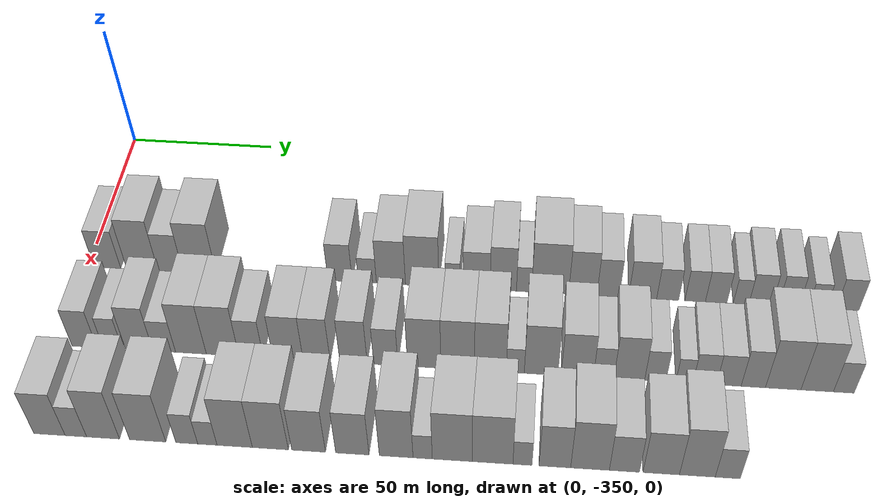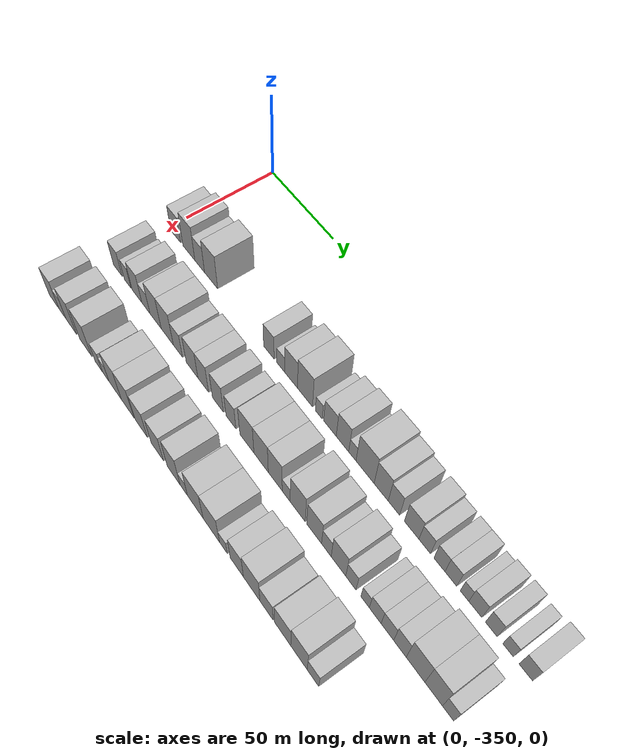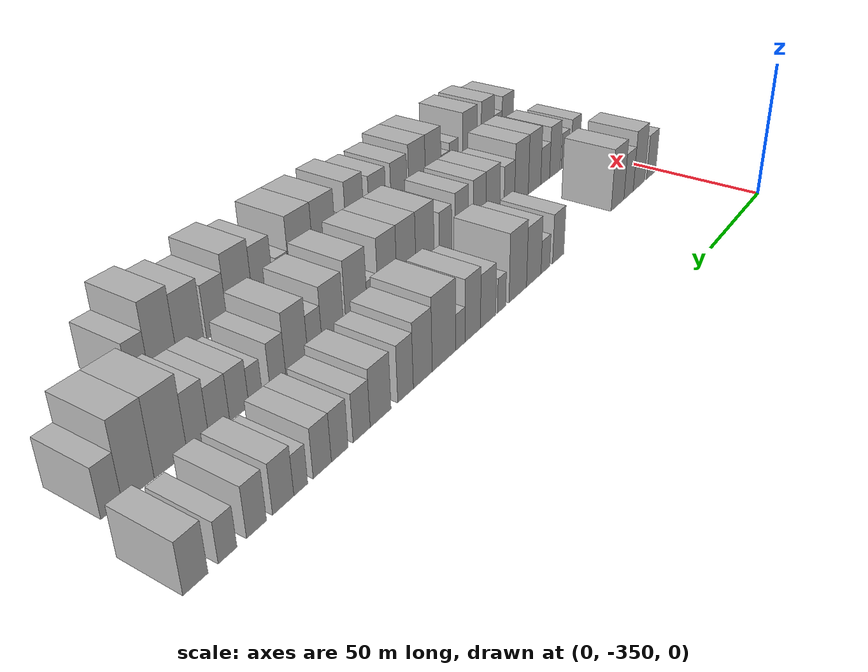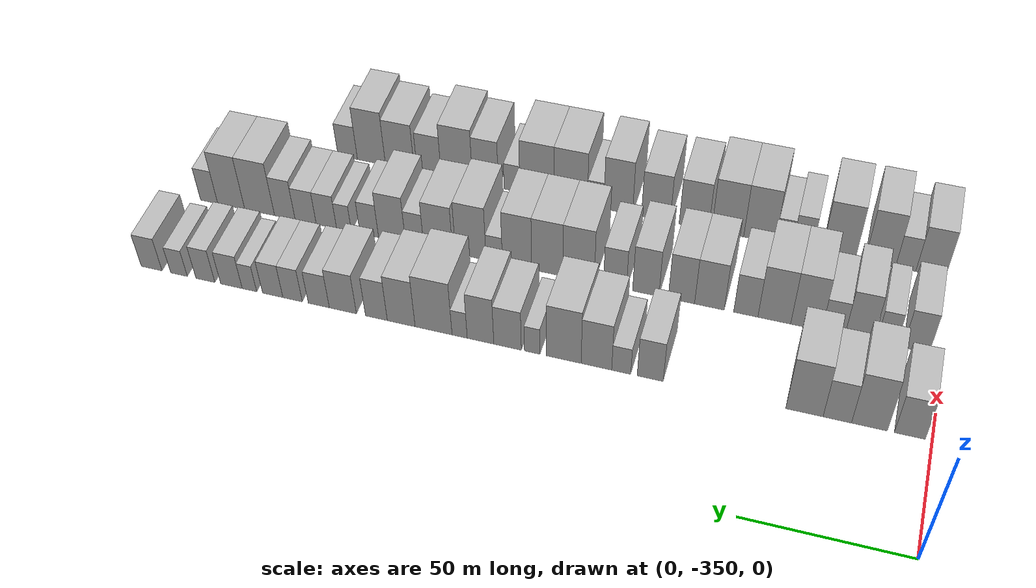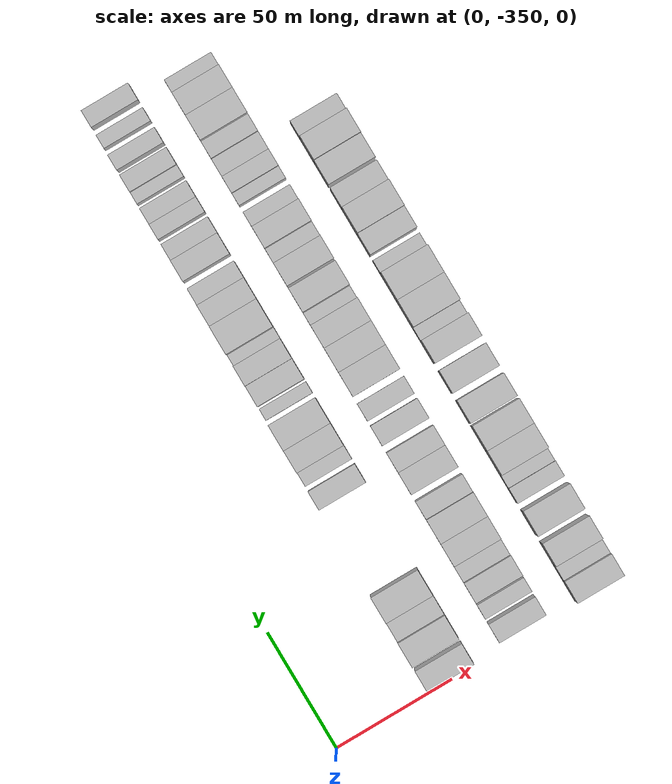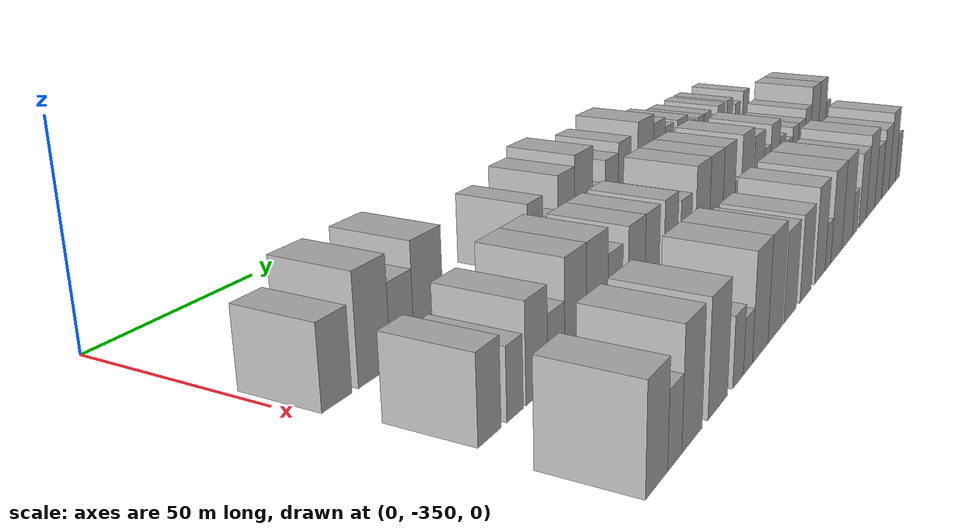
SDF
<sdf version="1.6">
 <world name="default">
  <model name="building_1">
   <static>1</static>
   <pose>50.0000 -343.5456 0 0.000000 0.000000 0.000000</pose>
   <link name="link">
    <pose>0 0 9.00 0 0 0</pose>
    <collision name="collision"><geometry><box><size>20.0000 8.9087 18.0000</size></box></geometry></collision>
    <visual name="visual">
     <cast_shadows>0</cast_shadows>
     <geometry><box><size>20.0000 8.9087 18.0000</size></box></geometry>
     <material>
      <script>
       <uri>model://HANNAS_wall/materials/scripts</uri>
       <uri>model://HANNAS_wall/materials/textures</uri>
       <name>vrc/HANNAS_wall</name>
      </script>
     </material>
    </visual>
   </link>
  </model>
  <model name="building_2">
   <static>1</static>
   <pose>50.0000 -331.8647 0 0.000000 0.000000 0.000000</pose>
   <link name="link">
    <pose>0 0 12.00 0 0 0</pose>
    <collision name="collision"><geometry><box><size>20.0000 10.4532 24.0000</size></box></geometry></collision>
    <visual name="visual">
     <cast_shadows>0</cast_shadows>
     <geometry><box><size>20.0000 10.4532 24.0000</size></box></geometry>
     <material>
      <script>
       <uri>model://HANNAS_wall/materials/scripts</uri>
       <uri>model://HANNAS_wall/materials/textures</uri>
       <name>vrc/HANNAS_wall</name>
      </script>
     </material>
    </visual>
   </link>
  </model>
  <model name="building_3">
   <static>1</static>
   <pose>50.0000 -322.4770 0 0.000000 0.000000 0.000000</pose>
   <link name="link">
    <pose>0 0 9.00 0 0 0</pose>
    <collision name="collision"><geometry><box><size>20.0000 8.3221 18.0000</size></box></geometry></collision>
    <visual name="visual">
     <cast_shadows>0</cast_shadows>
     <geometry><box><size>20.0000 8.3221 18.0000</size></box></geometry>
     <material>
      <script>
       <uri>model://HANNAS_wall/materials/scripts</uri>
       <uri>model://HANNAS_wall/materials/textures</uri>
       <name>vrc/HANNAS_wall</name>
      </script>
     </material>
    </visual>
   </link>
  </model>
  <model name="building_4">
   <static>1</static>
   <pose>50.0000 -312.7999 0 0.000000 0.000000 0.000000</pose>
   <link name="link">
    <pose>0 0 12.00 0 0 0</pose>
    <collision name="collision"><geometry><box><size>20.0000 11.0322 24.0000</size></box></geometry></collision>
    <visual name="visual">
     <cast_shadows>0</cast_shadows>
     <geometry><box><size>20.0000 11.0322 24.0000</size></box></geometry>
     <material>
      <script>
       <uri>model://HANNAS_wall/materials/scripts</uri>
       <uri>model://HANNAS_wall/materials/textures</uri>
       <name>vrc/HANNAS_wall</name>
      </script>
     </material>
    </visual>
   </link>
  </model>
  <model name="building_5">
   <static>1</static>
   <pose>50.0000 -266.3293 0 0.000000 0.000000 0.000000</pose>
   <link name="link">
    <pose>0 0 9.00 0 0 0</pose>
    <collision name="collision"><geometry><box><size>20.0000 7.9696 18.0000</size></box></geometry></collision>
    <visual name="visual">
     <cast_shadows>0</cast_shadows>
     <geometry><box><size>20.0000 7.9696 18.0000</size></box></geometry>
     <material>
      <script>
       <uri>model://HANNAS_wall/materials/scripts</uri>
       <uri>model://HANNAS_wall/materials/textures</uri>
       <name>vrc/HANNAS_wall</name>
      </script>
     </material>
    </visual>
   </link>
  </model>
  <model name="building_6">
   <static>1</static>
   <pose>50.0000 -257.3935 0 0.000000 0.000000 0.000000</pose>
   <link name="link">
    <pose>0 0 6.00 0 0 0</pose>
    <collision name="collision"><geometry><box><size>20.0000 5.9021 12.0000</size></box></geometry></collision>
    <visual name="visual">
     <cast_shadows>0</cast_shadows>
     <geometry><box><size>20.0000 5.9021 12.0000</size></box></geometry>
     <material>
      <script>
       <uri>model://HANNAS_wall/materials/scripts</uri>
       <uri>model://HANNAS_wall/materials/textures</uri>
       <name>vrc/HANNAS_wall</name>
      </script>
     </material>
    </visual>
   </link>
  </model>
  <model name="building_7">
   <static>1</static>
   <pose>50.0000 -249.6908 0 0.000000 0.000000 0.000000</pose>
   <link name="link">
    <pose>0 0 10.50 0 0 0</pose>
    <collision name="collision"><geometry><box><size>20.0000 9.5032 21.0000</size></box></geometry></collision>
    <visual name="visual">
     <cast_shadows>0</cast_shadows>
     <geometry><box><size>20.0000 9.5032 21.0000</size></box></geometry>
     <material>
      <script>
       <uri>model://HANNAS_wall/materials/scripts</uri>
       <uri>model://HANNAS_wall/materials/textures</uri>
       <name>vrc/HANNAS_wall</name>
      </script>
     </material>
    </visual>
   </link>
  </model>
  <model name="building_8">
   <static>1</static>
   <pose>50.0000 -239.4764 0 0.000000 0.000000 0.000000</pose>
   <link name="link">
    <pose>0 0 12.00 0 0 0</pose>
    <collision name="collision"><geometry><box><size>20.0000 10.9257 24.0000</size></box></geometry></collision>
    <visual name="visual">
     <cast_shadows>0</cast_shadows>
     <geometry><box><size>20.0000 10.9257 24.0000</size></box></geometry>
     <material>
      <script>
       <uri>model://HANNAS_wall/materials/scripts</uri>
       <uri>model://HANNAS_wall/materials/textures</uri>
       <name>vrc/HANNAS_wall</name>
      </script>
     </material>
    </visual>
   </link>
  </model>
  <model name="building_9">
   <static>1</static>
   <pose>50.0000 -229.5694 0 0.000000 0.000000 0.000000</pose>
   <link name="link">
    <pose>0 0 6.00 0 0 0</pose>
    <collision name="collision"><geometry><box><size>20.0000 4.8882 12.0000</size></box></geometry></collision>
    <visual name="visual">
     <cast_shadows>0</cast_shadows>
     <geometry><box><size>20.0000 4.8882 12.0000</size></box></geometry>
     <material>
      <script>
       <uri>model://HANNAS_wall/materials/scripts</uri>
       <uri>model://HANNAS_wall/materials/textures</uri>
       <name>vrc/HANNAS_wall</name>
      </script>
     </material>
    </visual>
   </link>
  </model>
  <model name="building_10">
   <static>1</static>
   <pose>50.0000 -221.7451 0 0.000000 0.000000 0.000000</pose>
   <link name="link">
    <pose>0 0 9.00 0 0 0</pose>
    <collision name="collision"><geometry><box><size>20.0000 8.7604 18.0000</size></box></geometry></collision>
    <visual name="visual">
     <cast_shadows>0</cast_shadows>
     <geometry><box><size>20.0000 8.7604 18.0000</size></box></geometry>
     <material>
      <script>
       <uri>model://HANNAS_wall/materials/scripts</uri>
       <uri>model://HANNAS_wall/materials/textures</uri>
       <name>vrc/HANNAS_wall</name>
      </script>
     </material>
    </visual>
   </link>
  </model>
  <model name="building_11">
   <static>1</static>
   <pose>50.0000 -213.0992 0 0.000000 0.000000 0.000000</pose>
   <link name="link">
    <pose>0 0 10.50 0 0 0</pose>
    <collision name="collision"><geometry><box><size>20.0000 8.5314 21.0000</size></box></geometry></collision>
    <visual name="visual">
     <cast_shadows>0</cast_shadows>
     <geometry><box><size>20.0000 8.5314 21.0000</size></box></geometry>
     <material>
      <script>
       <uri>model://HANNAS_wall/materials/scripts</uri>
       <uri>model://HANNAS_wall/materials/textures</uri>
       <name>vrc/HANNAS_wall</name>
      </script>
     </material>
    </visual>
   </link>
  </model>
  <model name="building_12">
   <static>1</static>
   <pose>50.0000 -206.3909 0 0.000000 0.000000 0.000000</pose>
   <link name="link">
    <pose>0 0 6.00 0 0 0</pose>
    <collision name="collision"><geometry><box><size>20.0000 4.8852 12.0000</size></box></geometry></collision>
    <visual name="visual">
     <cast_shadows>0</cast_shadows>
     <geometry><box><size>20.0000 4.8852 12.0000</size></box></geometry>
     <material>
      <script>
       <uri>model://HANNAS_wall/materials/scripts</uri>
       <uri>model://HANNAS_wall/materials/textures</uri>
       <name>vrc/HANNAS_wall</name>
      </script>
     </material>
    </visual>
   </link>
  </model>
  <model name="building_13">
   <static>1</static>
   <pose>50.0000 -197.9598 0 0.000000 0.000000 0.000000</pose>
   <link name="link">
    <pose>0 0 12.00 0 0 0</pose>
    <collision name="collision"><geometry><box><size>20.0000 11.9770 24.0000</size></box></geometry></collision>
    <visual name="visual">
     <cast_shadows>0</cast_shadows>
     <geometry><box><size>20.0000 11.9770 24.0000</size></box></geometry>
     <material>
      <script>
       <uri>model://HANNAS_wall/materials/scripts</uri>
       <uri>model://HANNAS_wall/materials/textures</uri>
       <name>vrc/HANNAS_wall</name>
      </script>
     </material>
    </visual>
   </link>
  </model>
  <model name="building_14">
   <static>1</static>
   <pose>50.0000 -187.4181 0 0.000000 0.000000 0.000000</pose>
   <link name="link">
    <pose>0 0 10.50 0 0 0</pose>
    <collision name="collision"><geometry><box><size>20.0000 9.1064 21.0000</size></box></geometry></collision>
    <visual name="visual">
     <cast_shadows>0</cast_shadows>
     <geometry><box><size>20.0000 9.1064 21.0000</size></box></geometry>
     <material>
      <script>
       <uri>model://HANNAS_wall/materials/scripts</uri>
       <uri>model://HANNAS_wall/materials/textures</uri>
       <name>vrc/HANNAS_wall</name>
      </script>
     </material>
    </visual>
   </link>
  </model>
  <model name="building_15">
   <static>1</static>
   <pose>50.0000 -179.2638 0 0.000000 0.000000 0.000000</pose>
   <link name="link">
    <pose>0 0 9.00 0 0 0</pose>
    <collision name="collision"><geometry><box><size>20.0000 7.2021 18.0000</size></box></geometry></collision>
    <visual name="visual">
     <cast_shadows>0</cast_shadows>
     <geometry><box><size>20.0000 7.2021 18.0000</size></box></geometry>
     <material>
      <script>
       <uri>model://HANNAS_wall/materials/scripts</uri>
       <uri>model://HANNAS_wall/materials/textures</uri>
       <name>vrc/HANNAS_wall</name>
      </script>
     </material>
    </visual>
   </link>
  </model>
  <model name="building_16">
   <static>1</static>
   <pose>50.0000 -168.1647 0 0.000000 0.000000 0.000000</pose>
   <link name="link">
    <pose>0 0 9.00 0 0 0</pose>
    <collision name="collision"><geometry><box><size>20.0000 8.9962 18.0000</size></box></geometry></collision>
    <visual name="visual">
     <cast_shadows>0</cast_shadows>
     <geometry><box><size>20.0000 8.9962 18.0000</size></box></geometry>
     <material>
      <script>
       <uri>model://HANNAS_wall/materials/scripts</uri>
       <uri>model://HANNAS_wall/materials/textures</uri>
       <name>vrc/HANNAS_wall</name>
      </script>
     </material>
    </visual>
   </link>
  </model>
  <model name="building_17">
   <static>1</static>
   <pose>50.0000 -160.1435 0 0.000000 0.000000 0.000000</pose>
   <link name="link">
    <pose>0 0 7.50 0 0 0</pose>
    <collision name="collision"><geometry><box><size>20.0000 7.0462 15.0000</size></box></geometry></collision>
    <visual name="visual">
     <cast_shadows>0</cast_shadows>
     <geometry><box><size>20.0000 7.0462 15.0000</size></box></geometry>
     <material>
      <script>
       <uri>model://HANNAS_wall/materials/scripts</uri>
       <uri>model://HANNAS_wall/materials/textures</uri>
       <name>vrc/HANNAS_wall</name>
      </script>
     </material>
    </visual>
   </link>
  </model>
  <model name="building_18">
   <static>1</static>
   <pose>50.0000 -151.3453 0 0.000000 0.000000 0.000000</pose>
   <link name="link">
    <pose>0 0 7.50 0 0 0</pose>
    <collision name="collision"><geometry><box><size>20.0000 6.5501 15.0000</size></box></geometry></collision>
    <visual name="visual">
     <cast_shadows>0</cast_shadows>
     <geometry><box><size>20.0000 6.5501 15.0000</size></box></geometry>
     <material>
      <script>
       <uri>model://HANNAS_wall/materials/scripts</uri>
       <uri>model://HANNAS_wall/materials/textures</uri>
       <name>vrc/HANNAS_wall</name>
      </script>
     </material>
    </visual>
   </link>
  </model>
  <model name="building_19">
   <static>1</static>
   <pose>50.0000 -144.6323 0 0.000000 0.000000 0.000000</pose>
   <link name="link">
    <pose>0 0 7.50 0 0 0</pose>
    <collision name="collision"><geometry><box><size>20.0000 6.8760 15.0000</size></box></geometry></collision>
    <visual name="visual">
     <cast_shadows>0</cast_shadows>
     <geometry><box><size>20.0000 6.8760 15.0000</size></box></geometry>
     <material>
      <script>
       <uri>model://HANNAS_wall/materials/scripts</uri>
       <uri>model://HANNAS_wall/materials/textures</uri>
       <name>vrc/HANNAS_wall</name>
      </script>
     </material>
    </visual>
   </link>
  </model>
  <model name="building_20">
   <static>1</static>
   <pose>50.0000 -136.7203 0 0.000000 0.000000 0.000000</pose>
   <link name="link">
    <pose>0 0 6.00 0 0 0</pose>
    <collision name="collision"><geometry><box><size>20.0000 4.9480 12.0000</size></box></geometry></collision>
    <visual name="visual">
     <cast_shadows>0</cast_shadows>
     <geometry><box><size>20.0000 4.9480 12.0000</size></box></geometry>
     <material>
      <script>
       <uri>model://HANNAS_wall/materials/scripts</uri>
       <uri>model://HANNAS_wall/materials/textures</uri>
       <name>vrc/HANNAS_wall</name>
      </script>
     </material>
    </visual>
   </link>
  </model>
  <model name="building_21">
   <static>1</static>
   <pose>50.0000 -130.5726 0 0.000000 0.000000 0.000000</pose>
   <link name="link">
    <pose>0 0 7.50 0 0 0</pose>
    <collision name="collision"><geometry><box><size>20.0000 7.3475 15.0000</size></box></geometry></collision>
    <visual name="visual">
     <cast_shadows>0</cast_shadows>
     <geometry><box><size>20.0000 7.3475 15.0000</size></box></geometry>
     <material>
      <script>
       <uri>model://HANNAS_wall/materials/scripts</uri>
       <uri>model://HANNAS_wall/materials/textures</uri>
       <name>vrc/HANNAS_wall</name>
      </script>
     </material>
    </visual>
   </link>
  </model>
  <model name="building_22">
   <static>1</static>
   <pose>50.0000 -121.6357 0 0.000000 0.000000 0.000000</pose>
   <link name="link">
    <pose>0 0 7.50 0 0 0</pose>
    <collision name="collision"><geometry><box><size>20.0000 6.5262 15.0000</size></box></geometry></collision>
    <visual name="visual">
     <cast_shadows>0</cast_shadows>
     <geometry><box><size>20.0000 6.5262 15.0000</size></box></geometry>
     <material>
      <script>
       <uri>model://HANNAS_wall/materials/scripts</uri>
       <uri>model://HANNAS_wall/materials/textures</uri>
       <name>vrc/HANNAS_wall</name>
      </script>
     </material>
    </visual>
   </link>
  </model>
  <model name="building_23">
   <static>1</static>
   <pose>50.0000 -112.4987 0 0.000000 0.000000 0.000000</pose>
   <link name="link">
    <pose>0 0 6.00 0 0 0</pose>
    <collision name="collision"><geometry><box><size>20.0000 5.7479 12.0000</size></box></geometry></collision>
    <visual name="visual">
     <cast_shadows>0</cast_shadows>
     <geometry><box><size>20.0000 5.7479 12.0000</size></box></geometry>
     <material>
      <script>
       <uri>model://HANNAS_wall/materials/scripts</uri>
       <uri>model://HANNAS_wall/materials/textures</uri>
       <name>vrc/HANNAS_wall</name>
      </script>
     </material>
    </visual>
   </link>
  </model>
  <model name="building_24">
   <static>1</static>
   <pose>50.0000 -102.9991 0 0.000000 0.000000 0.000000</pose>
   <link name="link">
    <pose>0 0 7.50 0 0 0</pose>
    <collision name="collision"><geometry><box><size>20.0000 7.2514 15.0000</size></box></geometry></collision>
    <visual name="visual">
     <cast_shadows>0</cast_shadows>
     <geometry><box><size>20.0000 7.2514 15.0000</size></box></geometry>
     <material>
      <script>
       <uri>model://HANNAS_wall/materials/scripts</uri>
       <uri>model://HANNAS_wall/materials/textures</uri>
       <name>vrc/HANNAS_wall</name>
      </script>
     </material>
    </visual>
   </link>
  </model>
  <model name="building_72">
   <static>1</static>
   <pose>82.0000 -342.0469 0 0.000000 0.000000 0.000000</pose>
   <link name="link">
    <pose>0 0 9.00 0 0 0</pose>
    <collision name="collision"><geometry><box><size>20.0000 7.9063 18.0000</size></box></geometry></collision>
    <visual name="visual">
     <cast_shadows>0</cast_shadows>
     <geometry><box><size>20.0000 7.9063 18.0000</size></box></geometry>
     <material>
      <script>
       <uri>model://HANNAS_wall/materials/scripts</uri>
       <uri>model://HANNAS_wall/materials/textures</uri>
       <name>vrc/HANNAS_wall</name>
      </script>
     </material>
    </visual>
   </link>
  </model>
  <model name="building_73">
   <static>1</static>
   <pose>82.0000 -333.0649 0 0.000000 0.000000 0.000000</pose>
   <link name="link">
    <pose>0 0 7.50 0 0 0</pose>
    <collision name="collision"><geometry><box><size>20.0000 6.0577 15.0000</size></box></geometry></collision>
    <visual name="visual">
     <cast_shadows>0</cast_shadows>
     <geometry><box><size>20.0000 6.0577 15.0000</size></box></geometry>
     <material>
      <script>
       <uri>model://HANNAS_wall/materials/scripts</uri>
       <uri>model://HANNAS_wall/materials/textures</uri>
       <name>vrc/HANNAS_wall</name>
      </script>
     </material>
    </visual>
   </link>
  </model>
  <model name="building_74">
   <static>1</static>
   <pose>82.0000 -324.7012 0 0.000000 0.000000 0.000000</pose>
   <link name="link">
    <pose>0 0 10.50 0 0 0</pose>
    <collision name="collision"><geometry><box><size>20.0000 8.6696 21.0000</size></box></geometry></collision>
    <visual name="visual">
     <cast_shadows>0</cast_shadows>
     <geometry><box><size>20.0000 8.6696 21.0000</size></box></geometry>
     <material>
      <script>
       <uri>model://HANNAS_wall/materials/scripts</uri>
       <uri>model://HANNAS_wall/materials/textures</uri>
       <name>vrc/HANNAS_wall</name>
      </script>
     </material>
    </visual>
   </link>
  </model>
  <model name="building_75">
   <static>1</static>
   <pose>82.0000 -316.8048 0 0.000000 0.000000 0.000000</pose>
   <link name="link">
    <pose>0 0 7.50 0 0 0</pose>
    <collision name="collision"><geometry><box><size>20.0000 7.1232 15.0000</size></box></geometry></collision>
    <visual name="visual">
     <cast_shadows>0</cast_shadows>
     <geometry><box><size>20.0000 7.1232 15.0000</size></box></geometry>
     <material>
      <script>
       <uri>model://HANNAS_wall/materials/scripts</uri>
       <uri>model://HANNAS_wall/materials/textures</uri>
       <name>vrc/HANNAS_wall</name>
      </script>
     </material>
    </visual>
   </link>
  </model>
  <model name="building_76">
   <static>1</static>
   <pose>82.0000 -308.4089 0 0.000000 0.000000 0.000000</pose>
   <link name="link">
    <pose>0 0 12.00 0 0 0</pose>
    <collision name="collision"><geometry><box><size>20.0000 9.6686 24.0000</size></box></geometry></collision>
    <visual name="visual">
     <cast_shadows>0</cast_shadows>
     <geometry><box><size>20.0000 9.6686 24.0000</size></box></geometry>
     <material>
      <script>
       <uri>model://HANNAS_wall/materials/scripts</uri>
       <uri>model://HANNAS_wall/materials/textures</uri>
       <name>vrc/HANNAS_wall</name>
      </script>
     </material>
    </visual>
   </link>
  </model>
  <model name="building_77">
   <static>1</static>
   <pose>82.0000 -298.4523 0 0.000000 0.000000 0.000000</pose>
   <link name="link">
    <pose>0 0 12.00 0 0 0</pose>
    <collision name="collision"><geometry><box><size>20.0000 10.2447 24.0000</size></box></geometry></collision>
    <visual name="visual">
     <cast_shadows>0</cast_shadows>
     <geometry><box><size>20.0000 10.2447 24.0000</size></box></geometry>
     <material>
      <script>
       <uri>model://HANNAS_wall/materials/scripts</uri>
       <uri>model://HANNAS_wall/materials/textures</uri>
       <name>vrc/HANNAS_wall</name>
      </script>
     </material>
    </visual>
   </link>
  </model>
  <model name="building_78">
   <static>1</static>
   <pose>82.0000 -289.5149 0 0.000000 0.000000 0.000000</pose>
   <link name="link">
    <pose>0 0 9.00 0 0 0</pose>
    <collision name="collision"><geometry><box><size>20.0000 7.6301 18.0000</size></box></geometry></collision>
    <visual name="visual">
     <cast_shadows>0</cast_shadows>
     <geometry><box><size>20.0000 7.6301 18.0000</size></box></geometry>
     <material>
      <script>
       <uri>model://HANNAS_wall/materials/scripts</uri>
       <uri>model://HANNAS_wall/materials/textures</uri>
       <name>vrc/HANNAS_wall</name>
      </script>
     </material>
    </visual>
   </link>
  </model>
  <model name="building_79">
   <static>1</static>
   <pose>82.0000 -277.9944 0 0.000000 0.000000 0.000000</pose>
   <link name="link">
    <pose>0 0 10.50 0 0 0</pose>
    <collision name="collision"><geometry><box><size>20.0000 9.4110 21.0000</size></box></geometry></collision>
    <visual name="visual">
     <cast_shadows>0</cast_shadows>
     <geometry><box><size>20.0000 9.4110 21.0000</size></box></geometry>
     <material>
      <script>
       <uri>model://HANNAS_wall/materials/scripts</uri>
       <uri>model://HANNAS_wall/materials/textures</uri>
       <name>vrc/HANNAS_wall</name>
      </script>
     </material>
    </visual>
   </link>
  </model>
  <model name="building_80">
   <static>1</static>
   <pose>82.0000 -269.0662 0 0.000000 0.000000 0.000000</pose>
   <link name="link">
    <pose>0 0 10.50 0 0 0</pose>
    <collision name="collision"><geometry><box><size>20.0000 8.4454 21.0000</size></box></geometry></collision>
    <visual name="visual">
     <cast_shadows>0</cast_shadows>
     <geometry><box><size>20.0000 8.4454 21.0000</size></box></geometry>
     <material>
      <script>
       <uri>model://HANNAS_wall/materials/scripts</uri>
       <uri>model://HANNAS_wall/materials/textures</uri>
       <name>vrc/HANNAS_wall</name>
      </script>
     </material>
    </visual>
   </link>
  </model>
  <model name="building_81">
   <static>1</static>
   <pose>82.0000 -257.5932 0 0.000000 0.000000 0.000000</pose>
   <link name="link">
    <pose>0 0 10.50 0 0 0</pose>
    <collision name="collision"><geometry><box><size>20.0000 8.5006 21.0000</size></box></geometry></collision>
    <visual name="visual">
     <cast_shadows>0</cast_shadows>
     <geometry><box><size>20.0000 8.5006 21.0000</size></box></geometry>
     <material>
      <script>
       <uri>model://HANNAS_wall/materials/scripts</uri>
       <uri>model://HANNAS_wall/materials/textures</uri>
       <name>vrc/HANNAS_wall</name>
      </script>
     </material>
    </visual>
   </link>
  </model>
  <model name="building_82">
   <static>1</static>
   <pose>82.0000 -247.6128 0 0.000000 0.000000 0.000000</pose>
   <link name="link">
    <pose>0 0 9.00 0 0 0</pose>
    <collision name="collision"><geometry><box><size>20.0000 7.4602 18.0000</size></box></geometry></collision>
    <visual name="visual">
     <cast_shadows>0</cast_shadows>
     <geometry><box><size>20.0000 7.4602 18.0000</size></box></geometry>
     <material>
      <script>
       <uri>model://HANNAS_wall/materials/scripts</uri>
       <uri>model://HANNAS_wall/materials/textures</uri>
       <name>vrc/HANNAS_wall</name>
      </script>
     </material>
    </visual>
   </link>
  </model>
  <model name="building_83">
   <static>1</static>
   <pose>82.0000 -235.7181 0 0.000000 0.000000 0.000000</pose>
   <link name="link">
    <pose>0 0 12.00 0 0 0</pose>
    <collision name="collision"><geometry><box><size>20.0000 10.3291 24.0000</size></box></geometry></collision>
    <visual name="visual">
     <cast_shadows>0</cast_shadows>
     <geometry><box><size>20.0000 10.3291 24.0000</size></box></geometry>
     <material>
      <script>
       <uri>model://HANNAS_wall/materials/scripts</uri>
       <uri>model://HANNAS_wall/materials/textures</uri>
       <name>vrc/HANNAS_wall</name>
      </script>
     </material>
    </visual>
   </link>
  </model>
  <model name="building_84">
   <static>1</static>
   <pose>82.0000 -225.4066 0 0.000000 0.000000 0.000000</pose>
   <link name="link">
    <pose>0 0 12.00 0 0 0</pose>
    <collision name="collision"><geometry><box><size>20.0000 10.2939 24.0000</size></box></geometry></collision>
    <visual name="visual">
     <cast_shadows>0</cast_shadows>
     <geometry><box><size>20.0000 10.2939 24.0000</size></box></geometry>
     <material>
      <script>
       <uri>model://HANNAS_wall/materials/scripts</uri>
       <uri>model://HANNAS_wall/materials/textures</uri>
       <name>vrc/HANNAS_wall</name>
      </script>
     </material>
    </visual>
   </link>
  </model>
  <model name="building_85">
   <static>1</static>
   <pose>82.0000 -215.3774 0 0.000000 0.000000 0.000000</pose>
   <link name="link">
    <pose>0 0 12.00 0 0 0</pose>
    <collision name="collision"><geometry><box><size>20.0000 9.7645 24.0000</size></box></geometry></collision>
    <visual name="visual">
     <cast_shadows>0</cast_shadows>
     <geometry><box><size>20.0000 9.7645 24.0000</size></box></geometry>
     <material>
      <script>
       <uri>model://HANNAS_wall/materials/scripts</uri>
       <uri>model://HANNAS_wall/materials/textures</uri>
       <name>vrc/HANNAS_wall</name>
      </script>
     </material>
    </visual>
   </link>
  </model>
  <model name="building_86">
   <static>1</static>
   <pose>82.0000 -207.7499 0 0.000000 0.000000 0.000000</pose>
   <link name="link">
    <pose>0 0 6.00 0 0 0</pose>
    <collision name="collision"><geometry><box><size>20.0000 5.4905 12.0000</size></box></geometry></collision>
    <visual name="visual">
     <cast_shadows>0</cast_shadows>
     <geometry><box><size>20.0000 5.4905 12.0000</size></box></geometry>
     <material>
      <script>
       <uri>model://HANNAS_wall/materials/scripts</uri>
       <uri>model://HANNAS_wall/materials/textures</uri>
       <name>vrc/HANNAS_wall</name>
      </script>
     </material>
    </visual>
   </link>
  </model>
  <model name="building_87">
   <static>1</static>
   <pose>82.0000 -199.8691 0 0.000000 0.000000 0.000000</pose>
   <link name="link">
    <pose>0 0 12.00 0 0 0</pose>
    <collision name="collision"><geometry><box><size>20.0000 10.2711 24.0000</size></box></geometry></collision>
    <visual name="visual">
     <cast_shadows>0</cast_shadows>
     <geometry><box><size>20.0000 10.2711 24.0000</size></box></geometry>
     <material>
      <script>
       <uri>model://HANNAS_wall/materials/scripts</uri>
       <uri>model://HANNAS_wall/materials/textures</uri>
       <name>vrc/HANNAS_wall</name>
      </script>
     </material>
    </visual>
   </link>
  </model>
  <model name="building_88">
   <static>1</static>
   <pose>82.0000 -188.8175 0 0.000000 0.000000 0.000000</pose>
   <link name="link">
    <pose>0 0 10.50 0 0 0</pose>
    <collision name="collision"><geometry><box><size>20.0000 9.8321 21.0000</size></box></geometry></collision>
    <visual name="visual">
     <cast_shadows>0</cast_shadows>
     <geometry><box><size>20.0000 9.8321 21.0000</size></box></geometry>
     <material>
      <script>
       <uri>model://HANNAS_wall/materials/scripts</uri>
       <uri>model://HANNAS_wall/materials/textures</uri>
       <name>vrc/HANNAS_wall</name>
      </script>
     </material>
    </visual>
   </link>
  </model>
  <model name="building_89">
   <static>1</static>
   <pose>82.0000 -180.7747 0 0.000000 0.000000 0.000000</pose>
   <link name="link">
    <pose>0 0 7.50 0 0 0</pose>
    <collision name="collision"><geometry><box><size>20.0000 6.2535 15.0000</size></box></geometry></collision>
    <visual name="visual">
     <cast_shadows>0</cast_shadows>
     <geometry><box><size>20.0000 6.2535 15.0000</size></box></geometry>
     <material>
      <script>
       <uri>model://HANNAS_wall/materials/scripts</uri>
       <uri>model://HANNAS_wall/materials/textures</uri>
       <name>vrc/HANNAS_wall</name>
      </script>
     </material>
    </visual>
   </link>
  </model>
  <model name="building_90">
   <static>1</static>
   <pose>82.0000 -172.9870 0 0.000000 0.000000 0.000000</pose>
   <link name="link">
    <pose>0 0 10.50 0 0 0</pose>
    <collision name="collision"><geometry><box><size>20.0000 9.3221 21.0000</size></box></geometry></collision>
    <visual name="visual">
     <cast_shadows>0</cast_shadows>
     <geometry><box><size>20.0000 9.3221 21.0000</size></box></geometry>
     <material>
      <script>
       <uri>model://HANNAS_wall/materials/scripts</uri>
       <uri>model://HANNAS_wall/materials/textures</uri>
       <name>vrc/HANNAS_wall</name>
      </script>
     </material>
    </visual>
   </link>
  </model>
  <model name="building_91">
   <static>1</static>
   <pose>82.0000 -165.1076 0 0.000000 0.000000 0.000000</pose>
   <link name="link">
    <pose>0 0 7.50 0 0 0</pose>
    <collision name="collision"><geometry><box><size>20.0000 6.4365 15.0000</size></box></geometry></collision>
    <visual name="visual">
     <cast_shadows>0</cast_shadows>
     <geometry><box><size>20.0000 6.4365 15.0000</size></box></geometry>
     <material>
      <script>
       <uri>model://HANNAS_wall/materials/scripts</uri>
       <uri>model://HANNAS_wall/materials/textures</uri>
       <name>vrc/HANNAS_wall</name>
      </script>
     </material>
    </visual>
   </link>
  </model>
  <model name="building_92">
   <static>1</static>
   <pose>82.0000 -156.3038 0 0.000000 0.000000 0.000000</pose>
   <link name="link">
    <pose>0 0 6.00 0 0 0</pose>
    <collision name="collision"><geometry><box><size>20.0000 5.1712 12.0000</size></box></geometry></collision>
    <visual name="visual">
     <cast_shadows>0</cast_shadows>
     <geometry><box><size>20.0000 5.1712 12.0000</size></box></geometry>
     <material>
      <script>
       <uri>model://HANNAS_wall/materials/scripts</uri>
       <uri>model://HANNAS_wall/materials/textures</uri>
       <name>vrc/HANNAS_wall</name>
      </script>
     </material>
    </visual>
   </link>
  </model>
  <model name="building_93">
   <static>1</static>
   <pose>82.0000 -150.1644 0 0.000000 0.000000 0.000000</pose>
   <link name="link">
    <pose>0 0 7.50 0 0 0</pose>
    <collision name="collision"><geometry><box><size>20.0000 7.1075 15.0000</size></box></geometry></collision>
    <visual name="visual">
     <cast_shadows>0</cast_shadows>
     <geometry><box><size>20.0000 7.1075 15.0000</size></box></geometry>
     <material>
      <script>
       <uri>model://HANNAS_wall/materials/scripts</uri>
       <uri>model://HANNAS_wall/materials/textures</uri>
       <name>vrc/HANNAS_wall</name>
      </script>
     </material>
    </visual>
   </link>
  </model>
  <model name="building_94">
   <static>1</static>
   <pose>82.0000 -142.8876 0 0.000000 0.000000 0.000000</pose>
   <link name="link">
    <pose>0 0 7.50 0 0 0</pose>
    <collision name="collision"><geometry><box><size>20.0000 7.4461 15.0000</size></box></geometry></collision>
    <visual name="visual">
     <cast_shadows>0</cast_shadows>
     <geometry><box><size>20.0000 7.4461 15.0000</size></box></geometry>
     <material>
      <script>
       <uri>model://HANNAS_wall/materials/scripts</uri>
       <uri>model://HANNAS_wall/materials/textures</uri>
       <name>vrc/HANNAS_wall</name>
      </script>
     </material>
    </visual>
   </link>
  </model>
  <model name="building_95">
   <static>1</static>
   <pose>82.0000 -135.5089 0 0.000000 0.000000 0.000000</pose>
   <link name="link">
    <pose>0 0 9.00 0 0 0</pose>
    <collision name="collision"><geometry><box><size>20.0000 7.3113 18.0000</size></box></geometry></collision>
    <visual name="visual">
     <cast_shadows>0</cast_shadows>
     <geometry><box><size>20.0000 7.3113 18.0000</size></box></geometry>
     <material>
      <script>
       <uri>model://HANNAS_wall/materials/scripts</uri>
       <uri>model://HANNAS_wall/materials/textures</uri>
       <name>vrc/HANNAS_wall</name>
      </script>
     </material>
    </visual>
   </link>
  </model>
  <model name="building_96">
   <static>1</static>
   <pose>82.0000 -126.5277 0 0.000000 0.000000 0.000000</pose>
   <link name="link">
    <pose>0 0 12.00 0 0 0</pose>
    <collision name="collision"><geometry><box><size>20.0000 10.6511 24.0000</size></box></geometry></collision>
    <visual name="visual">
     <cast_shadows>0</cast_shadows>
     <geometry><box><size>20.0000 10.6511 24.0000</size></box></geometry>
     <material>
      <script>
       <uri>model://HANNAS_wall/materials/scripts</uri>
       <uri>model://HANNAS_wall/materials/textures</uri>
       <name>vrc/HANNAS_wall</name>
      </script>
     </material>
    </visual>
   </link>
  </model>
  <model name="building_97">
   <static>1</static>
   <pose>82.0000 -116.3429 0 0.000000 0.000000 0.000000</pose>
   <link name="link">
    <pose>0 0 12.00 0 0 0</pose>
    <collision name="collision"><geometry><box><size>20.0000 9.7185 24.0000</size></box></geometry></collision>
    <visual name="visual">
     <cast_shadows>0</cast_shadows>
     <geometry><box><size>20.0000 9.7185 24.0000</size></box></geometry>
     <material>
      <script>
       <uri>model://HANNAS_wall/materials/scripts</uri>
       <uri>model://HANNAS_wall/materials/textures</uri>
       <name>vrc/HANNAS_wall</name>
      </script>
     </material>
    </visual>
   </link>
  </model>
  <model name="building_98">
   <static>1</static>
   <pose>82.0000 -108.3861 0 0.000000 0.000000 0.000000</pose>
   <link name="link">
    <pose>0 0 7.50 0 0 0</pose>
    <collision name="collision"><geometry><box><size>20.0000 6.1953 15.0000</size></box></geometry></collision>
    <visual name="visual">
     <cast_shadows>0</cast_shadows>
     <geometry><box><size>20.0000 6.1953 15.0000</size></box></geometry>
     <material>
      <script>
       <uri>model://HANNAS_wall/materials/scripts</uri>
       <uri>model://HANNAS_wall/materials/textures</uri>
       <name>vrc/HANNAS_wall</name>
      </script>
     </material>
    </visual>
   </link>
  </model>
  <model name="building_150">
   <static>1</static>
   <pose>114.0000 -343.3217 0 0.000000 0.000000 0.000000</pose>
   <link name="link">
    <pose>0 0 10.50 0 0 0</pose>
    <collision name="collision"><geometry><box><size>20.0000 9.3565 21.0000</size></box></geometry></collision>
    <visual name="visual">
     <cast_shadows>0</cast_shadows>
     <geometry><box><size>20.0000 9.3565 21.0000</size></box></geometry>
     <material>
      <script>
       <uri>model://HANNAS_wall/materials/scripts</uri>
       <uri>model://HANNAS_wall/materials/textures</uri>
       <name>vrc/HANNAS_wall</name>
      </script>
     </material>
    </visual>
   </link>
  </model>
  <model name="building_151">
   <static>1</static>
   <pose>114.0000 -335.4295 0 0.000000 0.000000 0.000000</pose>
   <link name="link">
    <pose>0 0 7.50 0 0 0</pose>
    <collision name="collision"><geometry><box><size>20.0000 6.4280 15.0000</size></box></geometry></collision>
    <visual name="visual">
     <cast_shadows>0</cast_shadows>
     <geometry><box><size>20.0000 6.4280 15.0000</size></box></geometry>
     <material>
      <script>
       <uri>model://HANNAS_wall/materials/scripts</uri>
       <uri>model://HANNAS_wall/materials/textures</uri>
       <name>vrc/HANNAS_wall</name>
      </script>
     </material>
    </visual>
   </link>
  </model>
  <model name="building_152">
   <static>1</static>
   <pose>114.0000 -327.3044 0 0.000000 0.000000 0.000000</pose>
   <link name="link">
    <pose>0 0 12.00 0 0 0</pose>
    <collision name="collision"><geometry><box><size>20.0000 9.8221 24.0000</size></box></geometry></collision>
    <visual name="visual">
     <cast_shadows>0</cast_shadows>
     <geometry><box><size>20.0000 9.8221 24.0000</size></box></geometry>
     <material>
      <script>
       <uri>model://HANNAS_wall/materials/scripts</uri>
       <uri>model://HANNAS_wall/materials/textures</uri>
       <name>vrc/HANNAS_wall</name>
      </script>
     </material>
    </visual>
   </link>
  </model>
  <model name="building_153">
   <static>1</static>
   <pose>114.0000 -314.0124 0 0.000000 0.000000 0.000000</pose>
   <link name="link">
    <pose>0 0 12.00 0 0 0</pose>
    <collision name="collision"><geometry><box><size>20.0000 10.7619 24.0000</size></box></geometry></collision>
    <visual name="visual">
     <cast_shadows>0</cast_shadows>
     <geometry><box><size>20.0000 10.7619 24.0000</size></box></geometry>
     <material>
      <script>
       <uri>model://HANNAS_wall/materials/scripts</uri>
       <uri>model://HANNAS_wall/materials/textures</uri>
       <name>vrc/HANNAS_wall</name>
      </script>
     </material>
    </visual>
   </link>
  </model>
  <model name="building_154">
   <static>1</static>
   <pose>114.0000 -302.3863 0 0.000000 0.000000 0.000000</pose>
   <link name="link">
    <pose>0 0 7.50 0 0 0</pose>
    <collision name="collision"><geometry><box><size>20.0000 6.4903 15.0000</size></box></geometry></collision>
    <visual name="visual">
     <cast_shadows>0</cast_shadows>
     <geometry><box><size>20.0000 6.4903 15.0000</size></box></geometry>
     <material>
      <script>
       <uri>model://HANNAS_wall/materials/scripts</uri>
       <uri>model://HANNAS_wall/materials/textures</uri>
       <name>vrc/HANNAS_wall</name>
      </script>
     </material>
    </visual>
   </link>
  </model>
  <model name="building_155">
   <static>1</static>
   <pose>114.0000 -296.2855 0 0.000000 0.000000 0.000000</pose>
   <link name="link">
    <pose>0 0 6.00 0 0 0</pose>
    <collision name="collision"><geometry><box><size>20.0000 5.7113 12.0000</size></box></geometry></collision>
    <visual name="visual">
     <cast_shadows>0</cast_shadows>
     <geometry><box><size>20.0000 5.7113 12.0000</size></box></geometry>
     <material>
      <script>
       <uri>model://HANNAS_wall/materials/scripts</uri>
       <uri>model://HANNAS_wall/materials/textures</uri>
       <name>vrc/HANNAS_wall</name>
      </script>
     </material>
    </visual>
   </link>
  </model>
  <model name="building_156">
   <static>1</static>
   <pose>114.0000 -288.2097 0 0.000000 0.000000 0.000000</pose>
   <link name="link">
    <pose>0 0 12.00 0 0 0</pose>
    <collision name="collision"><geometry><box><size>20.0000 10.4403 24.0000</size></box></geometry></collision>
    <visual name="visual">
     <cast_shadows>0</cast_shadows>
     <geometry><box><size>20.0000 10.4403 24.0000</size></box></geometry>
     <material>
      <script>
       <uri>model://HANNAS_wall/materials/scripts</uri>
       <uri>model://HANNAS_wall/materials/textures</uri>
       <name>vrc/HANNAS_wall</name>
      </script>
     </material>
    </visual>
   </link>
  </model>
  <model name="building_157">
   <static>1</static>
   <pose>114.0000 -277.6864 0 0.000000 0.000000 0.000000</pose>
   <link name="link">
    <pose>0 0 12.00 0 0 0</pose>
    <collision name="collision"><geometry><box><size>20.0000 10.6064 24.0000</size></box></geometry></collision>
    <visual name="visual">
     <cast_shadows>0</cast_shadows>
     <geometry><box><size>20.0000 10.6064 24.0000</size></box></geometry>
     <material>
      <script>
       <uri>model://HANNAS_wall/materials/scripts</uri>
       <uri>model://HANNAS_wall/materials/textures</uri>
       <name>vrc/HANNAS_wall</name>
      </script>
     </material>
    </visual>
   </link>
  </model>
  <model name="building_158">
   <static>1</static>
   <pose>114.0000 -266.4384 0 0.000000 0.000000 0.000000</pose>
   <link name="link">
    <pose>0 0 10.50 0 0 0</pose>
    <collision name="collision"><geometry><box><size>20.0000 9.8895 21.0000</size></box></geometry></collision>
    <visual name="visual">
     <cast_shadows>0</cast_shadows>
     <geometry><box><size>20.0000 9.8895 21.0000</size></box></geometry>
     <material>
      <script>
       <uri>model://HANNAS_wall/materials/scripts</uri>
       <uri>model://HANNAS_wall/materials/textures</uri>
       <name>vrc/HANNAS_wall</name>
      </script>
     </material>
    </visual>
   </link>
  </model>
  <model name="building_159">
   <static>1</static>
   <pose>114.0000 -253.6227 0 0.000000 0.000000 0.000000</pose>
   <link name="link">
    <pose>0 0 10.50 0 0 0</pose>
    <collision name="collision"><geometry><box><size>20.0000 9.7421 21.0000</size></box></geometry></collision>
    <visual name="visual">
     <cast_shadows>0</cast_shadows>
     <geometry><box><size>20.0000 9.7421 21.0000</size></box></geometry>
     <material>
      <script>
       <uri>model://HANNAS_wall/materials/scripts</uri>
       <uri>model://HANNAS_wall/materials/textures</uri>
       <name>vrc/HANNAS_wall</name>
      </script>
     </material>
    </visual>
   </link>
  </model>
  <model name="building_160">
   <static>1</static>
   <pose>114.0000 -240.8364 0 0.000000 0.000000 0.000000</pose>
   <link name="link">
    <pose>0 0 12.00 0 0 0</pose>
    <collision name="collision"><geometry><box><size>20.0000 9.8305 24.0000</size></box></geometry></collision>
    <visual name="visual">
     <cast_shadows>0</cast_shadows>
     <geometry><box><size>20.0000 9.8305 24.0000</size></box></geometry>
     <material>
      <script>
       <uri>model://HANNAS_wall/materials/scripts</uri>
       <uri>model://HANNAS_wall/materials/textures</uri>
       <name>vrc/HANNAS_wall</name>
      </script>
     </material>
    </visual>
   </link>
  </model>
  <model name="building_161">
   <static>1</static>
   <pose>114.0000 -233.1251 0 0.000000 0.000000 0.000000</pose>
   <link name="link">
    <pose>0 0 6.00 0 0 0</pose>
    <collision name="collision"><geometry><box><size>20.0000 5.5922 12.0000</size></box></geometry></collision>
    <visual name="visual">
     <cast_shadows>0</cast_shadows>
     <geometry><box><size>20.0000 5.5922 12.0000</size></box></geometry>
     <material>
      <script>
       <uri>model://HANNAS_wall/materials/scripts</uri>
       <uri>model://HANNAS_wall/materials/textures</uri>
       <name>vrc/HANNAS_wall</name>
      </script>
     </material>
    </visual>
   </link>
  </model>
  <model name="building_162">
   <static>1</static>
   <pose>114.0000 -224.5406 0 0.000000 0.000000 0.000000</pose>
   <link name="link">
    <pose>0 0 12.00 0 0 0</pose>
    <collision name="collision"><geometry><box><size>20.0000 11.5768 24.0000</size></box></geometry></collision>
    <visual name="visual">
     <cast_shadows>0</cast_shadows>
     <geometry><box><size>20.0000 11.5768 24.0000</size></box></geometry>
     <material>
      <script>
       <uri>model://HANNAS_wall/materials/scripts</uri>
       <uri>model://HANNAS_wall/materials/textures</uri>
       <name>vrc/HANNAS_wall</name>
      </script>
     </material>
    </visual>
   </link>
  </model>
  <model name="building_163">
   <static>1</static>
   <pose>114.0000 -212.8603 0 0.000000 0.000000 0.000000</pose>
   <link name="link">
    <pose>0 0 12.00 0 0 0</pose>
    <collision name="collision"><geometry><box><size>20.0000 11.7839 24.0000</size></box></geometry></collision>
    <visual name="visual">
     <cast_shadows>0</cast_shadows>
     <geometry><box><size>20.0000 11.7839 24.0000</size></box></geometry>
     <material>
      <script>
       <uri>model://HANNAS_wall/materials/scripts</uri>
       <uri>model://HANNAS_wall/materials/textures</uri>
       <name>vrc/HANNAS_wall</name>
      </script>
     </material>
    </visual>
   </link>
  </model>
  <model name="building_164">
   <static>1</static>
   <pose>114.0000 -204.2133 0 0.000000 0.000000 0.000000</pose>
   <link name="link">
    <pose>0 0 6.00 0 0 0</pose>
    <collision name="collision"><geometry><box><size>20.0000 5.5100 12.0000</size></box></geometry></collision>
    <visual name="visual">
     <cast_shadows>0</cast_shadows>
     <geometry><box><size>20.0000 5.5100 12.0000</size></box></geometry>
     <material>
      <script>
       <uri>model://HANNAS_wall/materials/scripts</uri>
       <uri>model://HANNAS_wall/materials/textures</uri>
       <name>vrc/HANNAS_wall</name>
      </script>
     </material>
    </visual>
   </link>
  </model>
  <model name="building_165">
   <static>1</static>
   <pose>114.0000 -194.8964 0 0.000000 0.000000 0.000000</pose>
   <link name="link">
    <pose>0 0 10.50 0 0 0</pose>
    <collision name="collision"><geometry><box><size>20.0000 9.1238 21.0000</size></box></geometry></collision>
    <visual name="visual">
     <cast_shadows>0</cast_shadows>
     <geometry><box><size>20.0000 9.1238 21.0000</size></box></geometry>
     <material>
      <script>
       <uri>model://HANNAS_wall/materials/scripts</uri>
       <uri>model://HANNAS_wall/materials/textures</uri>
       <name>vrc/HANNAS_wall</name>
      </script>
     </material>
    </visual>
   </link>
  </model>
  <model name="building_166">
   <static>1</static>
   <pose>114.0000 -184.7731 0 0.000000 0.000000 0.000000</pose>
   <link name="link">
    <pose>0 0 12.00 0 0 0</pose>
    <collision name="collision"><geometry><box><size>20.0000 11.1229 24.0000</size></box></geometry></collision>
    <visual name="visual">
     <cast_shadows>0</cast_shadows>
     <geometry><box><size>20.0000 11.1229 24.0000</size></box></geometry>
     <material>
      <script>
       <uri>model://HANNAS_wall/materials/scripts</uri>
       <uri>model://HANNAS_wall/materials/textures</uri>
       <name>vrc/HANNAS_wall</name>
      </script>
     </material>
    </visual>
   </link>
  </model>
  <model name="building_167">
   <static>1</static>
   <pose>114.0000 -174.9027 0 0.000000 0.000000 0.000000</pose>
   <link name="link">
    <pose>0 0 9.00 0 0 0</pose>
    <collision name="collision"><geometry><box><size>20.0000 8.6178 18.0000</size></box></geometry></collision>
    <visual name="visual">
     <cast_shadows>0</cast_shadows>
     <geometry><box><size>20.0000 8.6178 18.0000</size></box></geometry>
     <material>
      <script>
       <uri>model://HANNAS_wall/materials/scripts</uri>
       <uri>model://HANNAS_wall/materials/textures</uri>
       <name>vrc/HANNAS_wall</name>
      </script>
     </material>
    </visual>
   </link>
  </model>
  <model name="building_168">
   <static>1</static>
   <pose>114.0000 -164.3871 0 0.000000 0.000000 0.000000</pose>
   <link name="link">
    <pose>0 0 10.50 0 0 0</pose>
    <collision name="collision"><geometry><box><size>20.0000 10.4135 21.0000</size></box></geometry></collision>
    <visual name="visual">
     <cast_shadows>0</cast_shadows>
     <geometry><box><size>20.0000 10.4135 21.0000</size></box></geometry>
     <material>
      <script>
       <uri>model://HANNAS_wall/materials/scripts</uri>
       <uri>model://HANNAS_wall/materials/textures</uri>
       <name>vrc/HANNAS_wall</name>
      </script>
     </material>
    </visual>
   </link>
  </model>
  <model name="building_169">
   <static>1</static>
   <pose>114.0000 -154.0825 0 0.000000 0.000000 0.000000</pose>
   <link name="link">
    <pose>0 0 12.00 0 0 0</pose>
    <collision name="collision"><geometry><box><size>20.0000 10.1957 24.0000</size></box></geometry></collision>
    <visual name="visual">
     <cast_shadows>0</cast_shadows>
     <geometry><box><size>20.0000 10.1957 24.0000</size></box></geometry>
     <material>
      <script>
       <uri>model://HANNAS_wall/materials/scripts</uri>
       <uri>model://HANNAS_wall/materials/textures</uri>
       <name>vrc/HANNAS_wall</name>
      </script>
     </material>
    </visual>
   </link>
  </model>
  <model name="building_170">
   <static>1</static>
   <pose>114.0000 -145.4215 0 0.000000 0.000000 0.000000</pose>
   <link name="link">
    <pose>0 0 7.50 0 0 0</pose>
    <collision name="collision"><geometry><box><size>20.0000 7.1265 15.0000</size></box></geometry></collision>
    <visual name="visual">
     <cast_shadows>0</cast_shadows>
     <geometry><box><size>20.0000 7.1265 15.0000</size></box></geometry>
     <material>
      <script>
       <uri>model://HANNAS_wall/materials/scripts</uri>
       <uri>model://HANNAS_wall/materials/textures</uri>
       <name>vrc/HANNAS_wall</name>
      </script>
     </material>
    </visual>
   </link>
  </model>
 </world>
</sdf>
